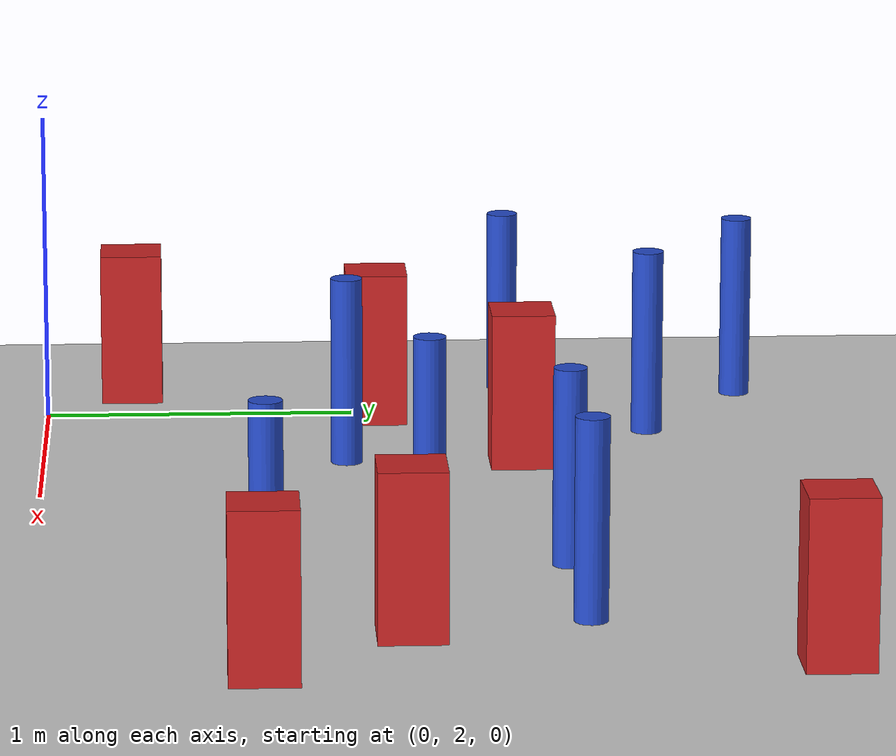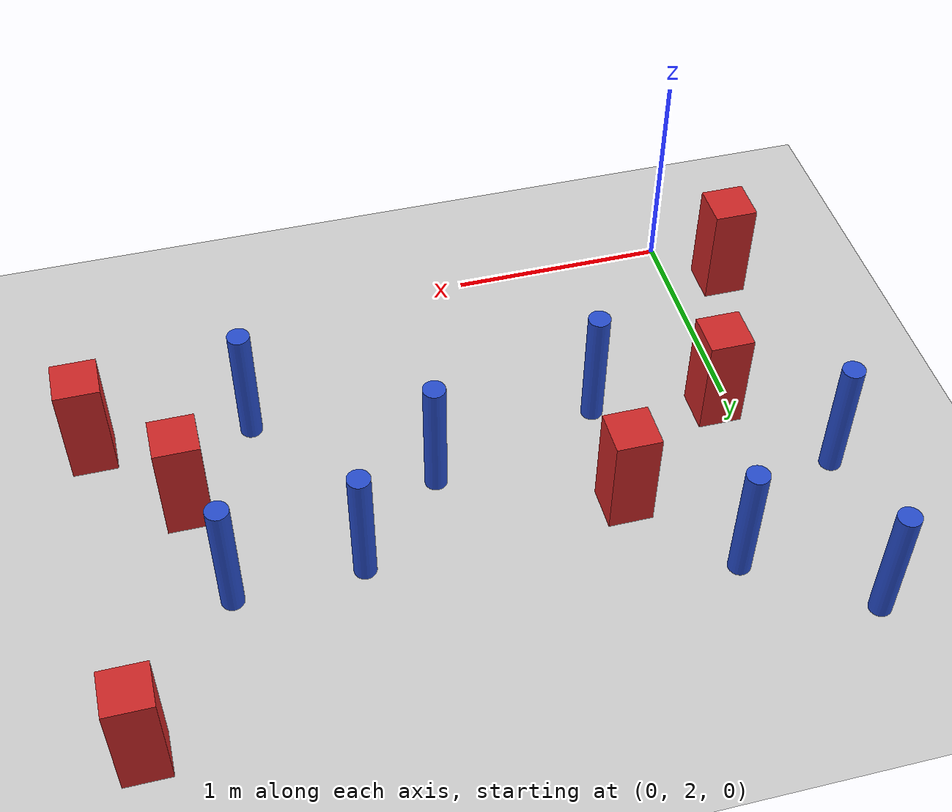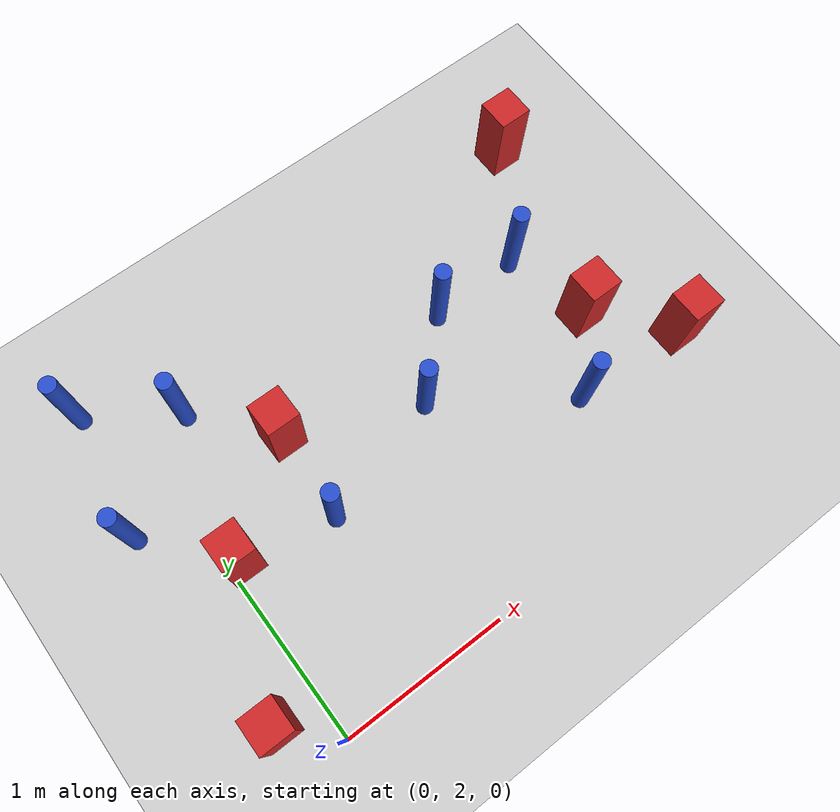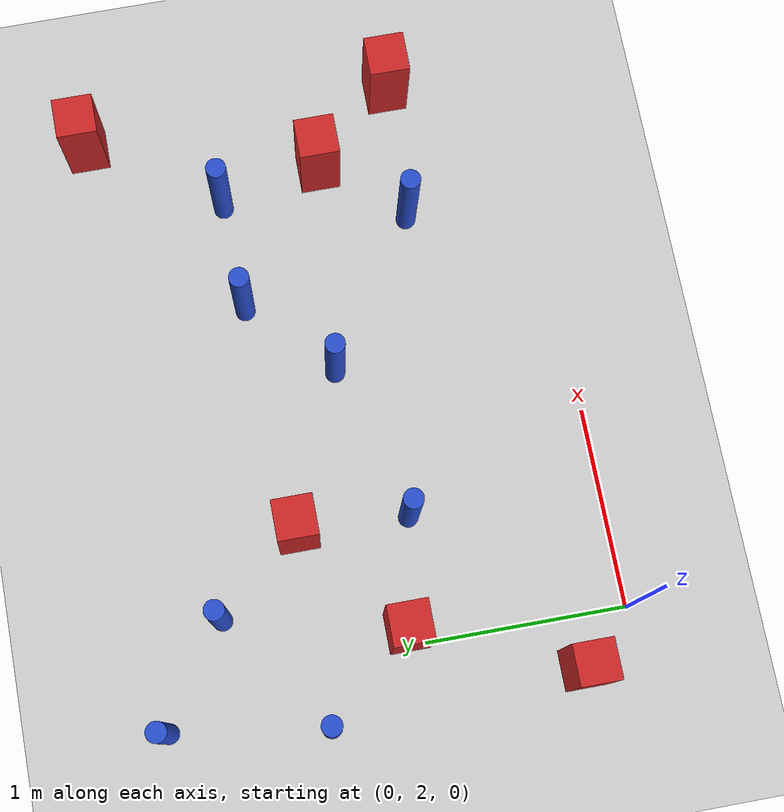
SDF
<sdf version="1.6">
 <world name="default">
  <model name="ground_plane">
   <static>1</static>
   <link name="link">
    <collision name="collision">
     <geometry><plane><normal>0 0 1</normal><size>100 100</size></plane></geometry>
     <surface><friction><ode><mu>100</mu><mu2>50</mu2></ode></friction></surface>
    </collision>
    <visual name="visual">
     <cast_shadows>0</cast_shadows>
     <geometry><plane><normal>0 0 1</normal><size>100 100</size></plane></geometry>
     <material>
      <ambient>1.0 1.0 1.0 1.0</ambient>
      <diffuse>0.8 0.8 0.8 1.0</diffuse>
      <specular>0.01 0.01 0.01 1.000000</specular>
     </material>
    </visual>
   </link>
  </model>
  <model name="square_post_obstacle6">
   <static>true</static>
   <pose>2.86335821314 2.66554241512 8.22691968438e-08 7.2212513382e-06 -7.54495500217e-07 2.29674213826e-05</pose>
   <link name="link">
    <pose>0 0 0.25 0 -0 0</pose>
    <inertial>
     <mass>100</mass>
     <inertia>
      <ixx>0.166667</ixx>
      <ixy>0</ixy>
      <ixz>0</ixz>
      <iyy>0.166667</iyy>
      <iyz>0</iyz>
      <izz>0.166667</izz>
     </inertia>
    </inertial>
    <collision name="collision"><geometry><box><size>.2 .2 .5</size></box></geometry></collision>
    <visual name="visual">
     <geometry><box><size>.2 .2 .5</size></box></geometry>
     <material>
      <script><name>Gazebo/Red</name><uri>file://media/materials/scripts/gazebo.material</uri></script>
     </material>
    </visual>
   </link>
  </model>
  <model name="square_post_obstacle7">
   <static>true</static>
   <pose>2.49568992455 3.08654107058 8.22691968438e-08 7.2212513382e-06 -7.54495500217e-07 2.29674213826e-05</pose>
   <link name="link">
    <pose>0 0 0.25 0 -0 0</pose>
    <inertial>
     <mass>100</mass>
     <inertia>
      <ixx>0.166667</ixx>
      <ixy>0</ixy>
      <ixz>0</ixz>
      <iyy>0.166667</iyy>
      <iyz>0</iyz>
      <izz>0.166667</izz>
     </inertia>
    </inertial>
    <collision name="collision"><geometry><box><size>.2 .2 .5</size></box></geometry></collision>
    <visual name="visual">
     <geometry><box><size>.2 .2 .5</size></box></geometry>
     <material>
      <script><name>Gazebo/Red</name><uri>file://media/materials/scripts/gazebo.material</uri></script>
     </material>
    </visual>
   </link>
  </model>
  <model name="pole_obstacle28">
   <static>true</static>
   <pose>-0.315152154569 3.51777317175 2.88873142074e-08 -9.90536689663e-09 4.60219948993e-07 -1.20965994959e-07</pose>
   <link name="link">
    <pose>0 0 0.3 0 -0 0</pose>
    <inertial>
     <mass>1</mass>
     <inertia><ixx>0.145833</ixx><ixy>0</ixy><ixz>0</ixz><iyy>0.145833</iyy><iyz>0</iyz><izz>0.125</izz></inertia>
    </inertial>
    <collision name="collision">
     <geometry><cylinder><radius>0.05</radius><length>.6</length></cylinder></geometry>
    </collision>
    <visual name="visual">
     <geometry><cylinder><radius>0.05</radius><length>.6</length></cylinder></geometry>
     <material>
      <script><name>Gazebo/Blue</name><uri>file://media/materials/scripts/gazebo.material</uri></script>
     </material>
    </visual>
   </link>
  </model>
  <model name="square_post_obstacle45">
   <static>true</static>
   <pose>2.81397346772 4.24776131736 8.22691968438e-08 7.2212513382e-06 -7.54495500217e-07 2.29674213826e-05</pose>
   <link name="link">
    <pose>0 0 0.25 0 -0 0</pose>
    <inertial>
     <mass>100</mass>
     <inertia>
      <ixx>0.166667</ixx>
      <ixy>0</ixy>
      <ixz>0</ixz>
      <iyy>0.166667</iyy>
      <iyz>0</iyz>
      <izz>0.166667</izz>
     </inertia>
    </inertial>
    <collision name="collision"><geometry><box><size>.2 .2 .5</size></box></geometry></collision>
    <visual name="visual">
     <geometry><box><size>.2 .2 .5</size></box></geometry>
     <material>
      <script><name>Gazebo/Red</name><uri>file://media/materials/scripts/gazebo.material</uri></script>
     </material>
    </visual>
   </link>
  </model>
  <model name="square_post_obstacle50">
   <static>true</static>
   <pose>-0.248405232852 2.27556034725 8.22691968438e-08 7.2212513382e-06 -7.54495500217e-07 2.29674213826e-05</pose>
   <link name="link">
    <pose>0 0 0.25 0 -0 0</pose>
    <inertial>
     <mass>100</mass>
     <inertia>
      <ixx>0.166667</ixx>
      <ixy>0</ixy>
      <ixz>0</ixz>
      <iyy>0.166667</iyy>
      <iyz>0</iyz>
      <izz>0.166667</izz>
     </inertia>
    </inertial>
    <collision name="collision"><geometry><box><size>.2 .2 .5</size></box></geometry></collision>
    <visual name="visual">
     <geometry><box><size>.2 .2 .5</size></box></geometry>
     <material>
      <script><name>Gazebo/Red</name><uri>file://media/materials/scripts/gazebo.material</uri></script>
     </material>
    </visual>
   </link>
  </model>
  <model name="square_post_obstacle55">
   <static>true</static>
   <pose>0.652797261702 3.51908316787 8.22691968438e-08 7.2212513382e-06 -7.54495500217e-07 2.29674213826e-05</pose>
   <link name="link">
    <pose>0 0 0.25 0 -0 0</pose>
    <inertial>
     <mass>100</mass>
     <inertia>
      <ixx>0.166667</ixx>
      <ixy>0</ixy>
      <ixz>0</ixz>
      <iyy>0.166667</iyy>
      <iyz>0</iyz>
      <izz>0.166667</izz>
     </inertia>
    </inertial>
    <collision name="collision"><geometry><box><size>.2 .2 .5</size></box></geometry></collision>
    <visual name="visual">
     <geometry><box><size>.2 .2 .5</size></box></geometry>
     <material>
      <script><name>Gazebo/Red</name><uri>file://media/materials/scripts/gazebo.material</uri></script>
     </material>
    </visual>
   </link>
  </model>
  <model name="pole_obstacle79">
   <static>true</static>
   <pose>1.41441816748 3.18993395315 2.88873142074e-08 -9.90536689791e-09 4.6021994899e-07 -1.20965994959e-07</pose>
   <link name="link">
    <pose>0 0 0.3 0 -0 0</pose>
    <inertial>
     <mass>1</mass>
     <inertia><ixx>0.145833</ixx><ixy>0</ixy><ixz>0</ixz><iyy>0.145833</iyy><iyz>0</iyz><izz>0.125</izz></inertia>
    </inertial>
    <collision name="collision">
     <geometry><cylinder><radius>0.05</radius><length>.6</length></cylinder></geometry>
    </collision>
    <visual name="visual">
     <geometry><cylinder><radius>0.05</radius><length>.6</length></cylinder></geometry>
     <material>
      <script><name>Gazebo/Blue</name><uri>file://media/materials/scripts/gazebo.material</uri></script>
     </material>
    </visual>
   </link>
  </model>
  <model name="pole_obstacle89">
   <static>true</static>
   <pose>-0.201768765496 4.29353680427 2.88873142074e-08 -9.90536689703e-09 4.60219948992e-07 -1.20965994959e-07</pose>
   <link name="link">
    <pose>0 0 0.3 0 -0 0</pose>
    <inertial>
     <mass>1</mass>
     <inertia><ixx>0.145833</ixx><ixy>0</ixy><ixz>0</ixz><iyy>0.145833</iyy><iyz>0</iyz><izz>0.125</izz></inertia>
    </inertial>
    <collision name="collision">
     <geometry><cylinder><radius>0.05</radius><length>.6</length></cylinder></geometry>
    </collision>
    <visual name="visual">
     <geometry><cylinder><radius>0.05</radius><length>.6</length></cylinder></geometry>
     <material>
      <script><name>Gazebo/Blue</name><uri>file://media/materials/scripts/gazebo.material</uri></script>
     </material>
    </visual>
   </link>
  </model>
  <model name="square_post_obstacle118">
   <static>true</static>
   <pose>0.0778012920095 3.07816666529 8.22691968438e-08 7.2212513382e-06 -7.54495500217e-07 2.29674213826e-05</pose>
   <link name="link">
    <pose>0 0 0.25 0 -0 0</pose>
    <inertial>
     <mass>100</mass>
     <inertia>
      <ixx>0.166667</ixx>
      <ixy>0</ixy>
      <ixz>0</ixz>
      <iyy>0.166667</iyy>
      <iyz>0</iyz>
      <izz>0.166667</izz>
     </inertia>
    </inertial>
    <collision name="collision"><geometry><box><size>.2 .2 .5</size></box></geometry></collision>
    <visual name="visual">
     <geometry><box><size>.2 .2 .5</size></box></geometry>
     <material>
      <script><name>Gazebo/Red</name><uri>file://media/materials/scripts/gazebo.material</uri></script>
     </material>
    </visual>
   </link>
  </model>
  <model name="pole_obstacle162">
   <static>true</static>
   <pose>0.624507279996 2.96524750776 2.88873142074e-08 -9.90536689636e-09 4.60219948994e-07 -1.20965994958e-07</pose>
   <link name="link">
    <pose>0 0 0.3 0 -0 0</pose>
    <inertial>
     <mass>1</mass>
     <inertia><ixx>0.145833</ixx><ixy>0</ixy><ixz>0</ixz><iyy>0.145833</iyy><iyz>0</iyz><izz>0.125</izz></inertia>
    </inertial>
    <collision name="collision">
     <geometry><cylinder><radius>0.05</radius><length>.6</length></cylinder></geometry>
    </collision>
    <visual name="visual">
     <geometry><cylinder><radius>0.05</radius><length>.6</length></cylinder></geometry>
     <material>
      <script><name>Gazebo/Blue</name><uri>file://media/materials/scripts/gazebo.material</uri></script>
     </material>
    </visual>
   </link>
  </model>
  <model name="pole_obstacle170">
   <static>true</static>
   <pose>2.37883699331 3.60174892034 2.88873142074e-08 -9.90536690232e-09 4.6021994898e-07 -1.20965994968e-07</pose>
   <link name="link">
    <pose>0 0 0.3 0 -0 0</pose>
    <inertial>
     <mass>1</mass>
     <inertia><ixx>0.145833</ixx><ixy>0</ixy><ixz>0</ixz><iyy>0.145833</iyy><iyz>0</iyz><izz>0.125</izz></inertia>
    </inertial>
    <collision name="collision">
     <geometry><cylinder><radius>0.05</radius><length>.6</length></cylinder></geometry>
    </collision>
    <visual name="visual">
     <geometry><cylinder><radius>0.05</radius><length>.6</length></cylinder></geometry>
     <material>
      <script><name>Gazebo/Blue</name><uri>file://media/materials/scripts/gazebo.material</uri></script>
     </material>
    </visual>
   </link>
  </model>
  <model name="pole_obstacle191">
   <static>true</static>
   <pose>2.15403448343 2.68464568598 2.88873142074e-08 -9.90536690232e-09 4.6021994898e-07 -1.20965994968e-07</pose>
   <link name="link">
    <pose>0 0 0.3 0 -0 0</pose>
    <inertial>
     <mass>1</mass>
     <inertia><ixx>0.145833</ixx><ixy>0</ixy><ixz>0</ixz><iyy>0.145833</iyy><iyz>0</iyz><izz>0.125</izz></inertia>
    </inertial>
    <collision name="collision">
     <geometry><cylinder><radius>0.05</radius><length>.6</length></cylinder></geometry>
    </collision>
    <visual name="visual">
     <geometry><cylinder><radius>0.05</radius><length>.6</length></cylinder></geometry>
     <material>
      <script><name>Gazebo/Blue</name><uri>file://media/materials/scripts/gazebo.material</uri></script>
     </material>
    </visual>
   </link>
  </model>
  <model name="pole_obstacle207">
   <static>true</static>
   <pose>0.285098429221 3.95313512152 2.88873142074e-08 -9.90536689825e-09 4.6021994899e-07 -1.20965994961e-07</pose>
   <link name="link">
    <pose>0 0 0.3 0 -0 0</pose>
    <inertial>
     <mass>1</mass>
     <inertia><ixx>0.145833</ixx><ixy>0</ixy><ixz>0</ixz><iyy>0.145833</iyy><iyz>0</iyz><izz>0.125</izz></inertia>
    </inertial>
    <collision name="collision">
     <geometry><cylinder><radius>0.05</radius><length>.6</length></cylinder></geometry>
    </collision>
    <visual name="visual">
     <geometry><cylinder><radius>0.05</radius><length>.6</length></cylinder></geometry>
     <material>
      <script><name>Gazebo/Blue</name><uri>file://media/materials/scripts/gazebo.material</uri></script>
     </material>
    </visual>
   </link>
  </model>
  <model name="pole_obstacle231">
   <static>true</static>
   <pose>1.81536000913 3.58269002041 2.88873142074e-08 -9.90536692039e-09 4.60219948937e-07 -1.20965994983e-07</pose>
   <link name="link">
    <pose>0 0 0.3 0 -0 0</pose>
    <inertial>
     <mass>1</mass>
     <inertia><ixx>0.145833</ixx><ixy>0</ixy><ixz>0</ixz><iyy>0.145833</iyy><iyz>0</iyz><izz>0.125</izz></inertia>
    </inertial>
    <collision name="collision">
     <geometry><cylinder><radius>0.05</radius><length>.6</length></cylinder></geometry>
    </collision>
    <visual name="visual">
     <geometry><cylinder><radius>0.05</radius><length>.6</length></cylinder></geometry>
     <material>
      <script><name>Gazebo/Blue</name><uri>file://media/materials/scripts/gazebo.material</uri></script>
     </material>
    </visual>
   </link>
  </model>
 </world>
</sdf>
